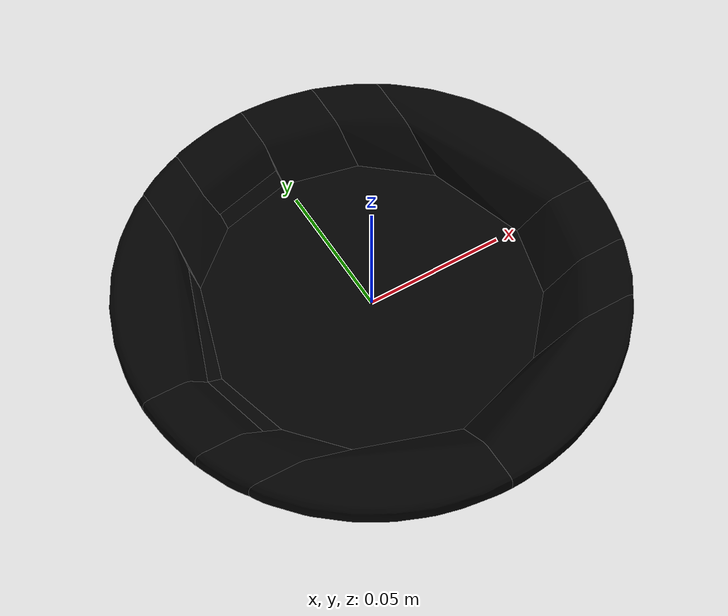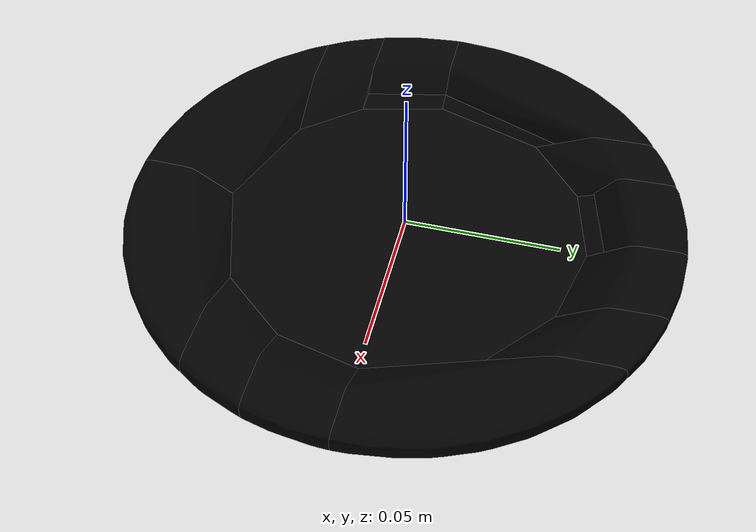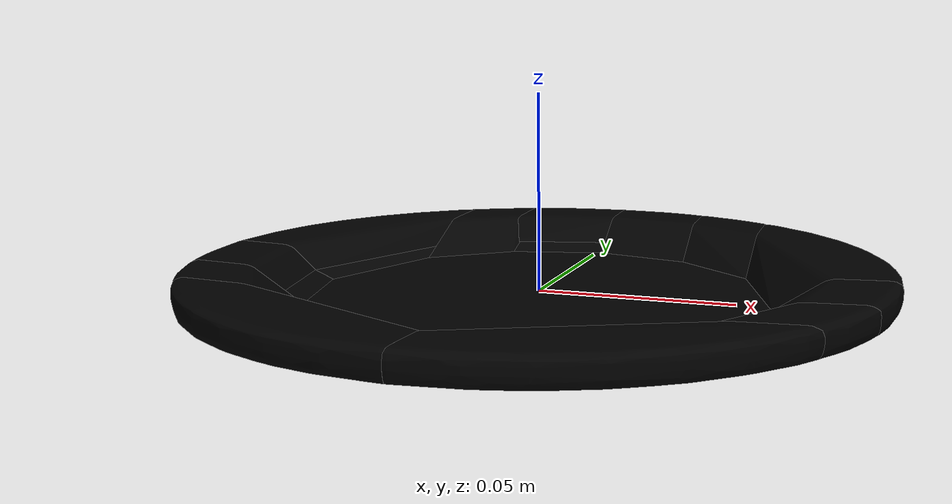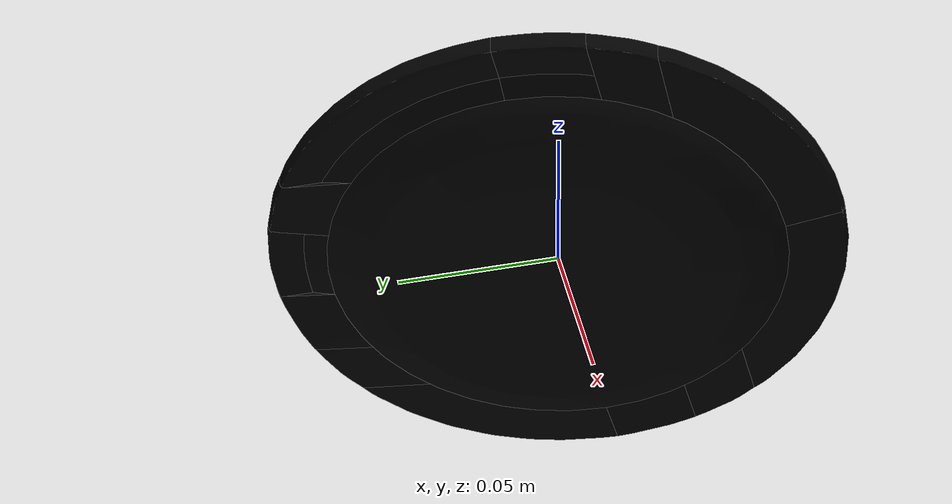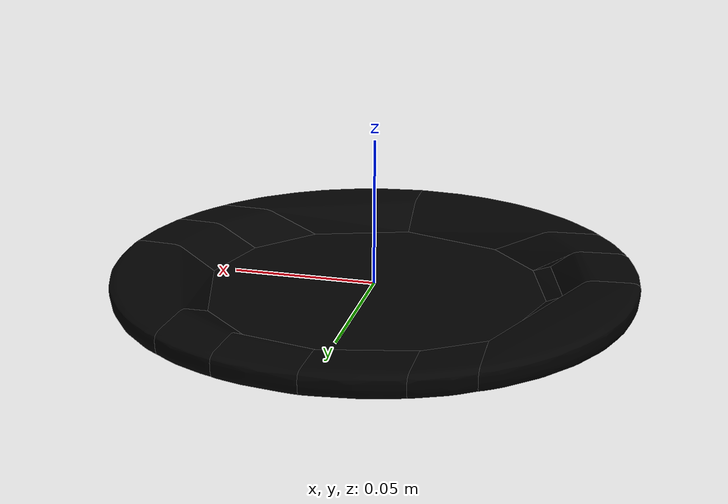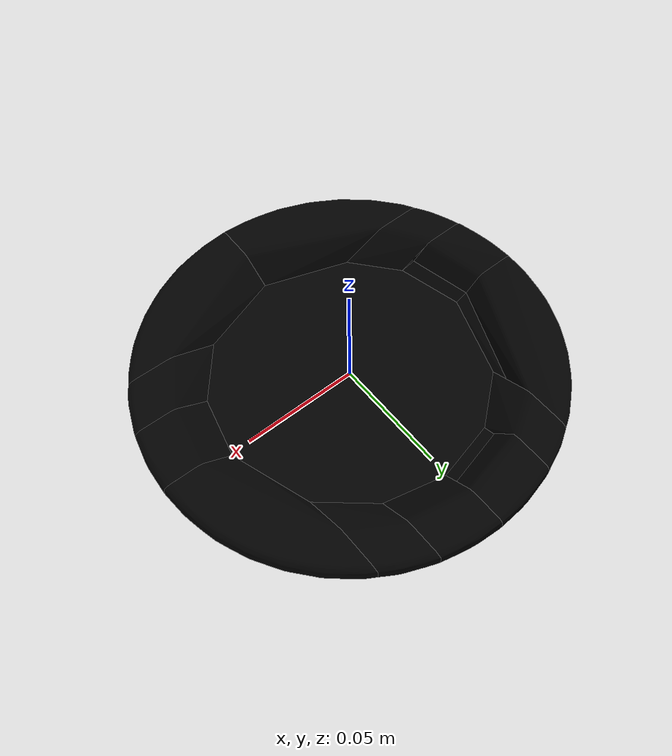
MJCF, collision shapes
<mujoco model="plate_12">
  <asset>
    <mesh file="visual/model_normalized_0.obj" name="model_normalized_0_vis" scale="0.175 0.175 0.175" refquat="1.0 0.0 0.0 0.0" />
    <material name="lambert2.029" specular="0.5" shininess="0.15999998099999999" rgba="0.800000 0.800000 0.800000 1.0" />
    <mesh file="collision/model_collision_0.obj" name="model_collision_0" scale="0.175 0.175 0.175" refquat="1.0 0.0 0.0 0.0" />
    <mesh file="collision/model_collision_1.obj" name="model_collision_1" scale="0.175 0.175 0.175" refquat="1.0 0.0 0.0 0.0" />
    <mesh file="collision/model_collision_2.obj" name="model_collision_2" scale="0.175 0.175 0.175" refquat="1.0 0.0 0.0 0.0" />
    <mesh file="collision/model_collision_3.obj" name="model_collision_3" scale="0.175 0.175 0.175" refquat="1.0 0.0 0.0 0.0" />
    <mesh file="collision/model_collision_4.obj" name="model_collision_4" scale="0.175 0.175 0.175" refquat="1.0 0.0 0.0 0.0" />
    <mesh file="collision/model_collision_5.obj" name="model_collision_5" scale="0.175 0.175 0.175" refquat="1.0 0.0 0.0 0.0" />
    <mesh file="collision/model_collision_6.obj" name="model_collision_6" scale="0.175 0.175 0.175" refquat="1.0 0.0 0.0 0.0" />
    <mesh file="collision/model_collision_7.obj" name="model_collision_7" scale="0.175 0.175 0.175" refquat="1.0 0.0 0.0 0.0" />
    <mesh file="collision/model_collision_8.obj" name="model_collision_8" scale="0.175 0.175 0.175" refquat="1.0 0.0 0.0 0.0" />
    <mesh file="collision/model_collision_9.obj" name="model_collision_9" scale="0.175 0.175 0.175" refquat="1.0 0.0 0.0 0.0" />
    <mesh file="collision/model_collision_10.obj" name="model_collision_10" scale="0.175 0.175 0.175" refquat="1.0 0.0 0.0 0.0" />
    <mesh file="collision/model_collision_11.obj" name="model_collision_11" scale="0.175 0.175 0.175" refquat="1.0 0.0 0.0 0.0" />
    <mesh file="collision/model_collision_12.obj" name="model_collision_12" scale="0.175 0.175 0.175" refquat="1.0 0.0 0.0 0.0" />
    <mesh file="collision/model_collision_13.obj" name="model_collision_13" scale="0.175 0.175 0.175" refquat="1.0 0.0 0.0 0.0" />
    <mesh file="collision/model_collision_14.obj" name="model_collision_14" scale="0.175 0.175 0.175" refquat="1.0 0.0 0.0 0.0" />
    <mesh file="collision/model_collision_15.obj" name="model_collision_15" scale="0.175 0.175 0.175" refquat="1.0 0.0 0.0 0.0" />
  </asset>
  <default>
    <default class="region">
      <geom group="1" conaffinity="0" contype="0" rgba="0 1 0 0" />
    </default>
  </default>
  <worldbody>
    <body>
      <body name="object">
        <geom density="0" type="mesh" mesh="model_normalized_0_vis" conaffinity="0" contype="0" group="2" material="lambert2.029" mass="0.18" />
        <geom class="region" name="reg_bbox" type="box" pos="-2.624999998618316e-09 4.375000002554418e-09 -5.748750000000337e-06" size="0.08635902799999999 0.08635905775 0.007324364249999999" />
        <geom density="0" friction="1.2 0.1 0.001" type="mesh" group="3" rgba="0 0 0 0" mesh="model_collision_0"  condim="4"/>        <geom density="0" friction="1.2 0.1 0.001" type="mesh" group="3" rgba="0 0 0 0" mesh="model_collision_1"  condim="4"/>        <geom density="0" friction="1.2 0.1 0.001" type="mesh" group="3" rgba="0 0 0 0" mesh="model_collision_2"  condim="4"/>        <geom density="0" friction="1.2 0.1 0.001" type="mesh" group="3" rgba="0 0 0 0" mesh="model_collision_3"  condim="4"/>        <geom density="0" friction="1.2 0.1 0.001" type="mesh" group="3" rgba="0 0 0 0" mesh="model_collision_4"  condim="4"/>        <geom density="0" friction="1.2 0.1 0.001" type="mesh" group="3" rgba="0 0 0 0" mesh="model_collision_5"  condim="4"/>        <geom density="0" friction="1.2 0.1 0.001" type="mesh" group="3" rgba="0 0 0 0" mesh="model_collision_6"  condim="4"/>        <geom density="0" friction="1.2 0.1 0.001" type="mesh" group="3" rgba="0 0 0 0" mesh="model_collision_7"  condim="4"/>        <geom density="0" friction="1.2 0.1 0.001" type="mesh" group="3" rgba="0 0 0 0" mesh="model_collision_8"  condim="4"/>        <geom density="0" friction="1.2 0.1 0.001" type="mesh" group="3" rgba="0 0 0 0" mesh="model_collision_9"  condim="4"/>        <geom density="0" friction="1.2 0.1 0.001" type="mesh" group="3" rgba="0 0 0 0" mesh="model_collision_10"  condim="4"/>        <geom density="0" friction="1.2 0.1 0.001" type="mesh" group="3" rgba="0 0 0 0" mesh="model_collision_11"  condim="4"/>        <geom density="0" friction="1.2 0.1 0.001" type="mesh" group="3" rgba="0 0 0 0" mesh="model_collision_12"  condim="4"/>        <geom density="0" friction="1.2 0.1 0.001" type="mesh" group="3" rgba="0 0 0 0" mesh="model_collision_13"  condim="4"/>        <geom density="0" friction="1.2 0.1 0.001" type="mesh" group="3" rgba="0 0 0 0" mesh="model_collision_14"  condim="4"/>        <geom density="0" friction="1.2 0.1 0.001" type="mesh" group="3" rgba="0 0 0 0" mesh="model_collision_15"  condim="4"/>      </body>
    </body>
  </worldbody>
</mujoco>
